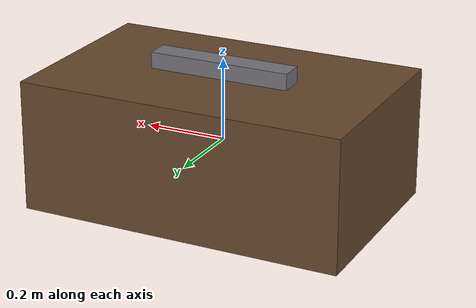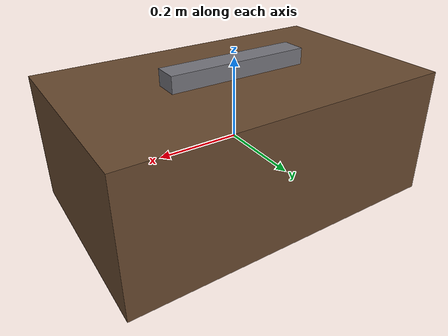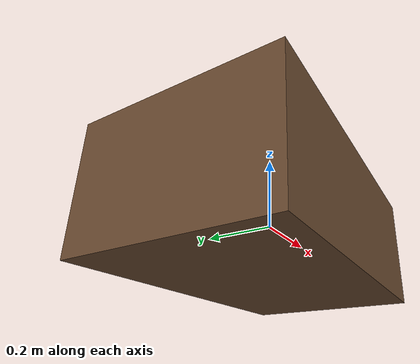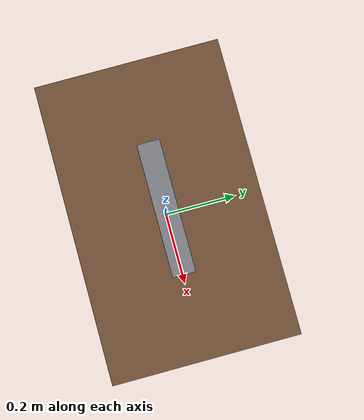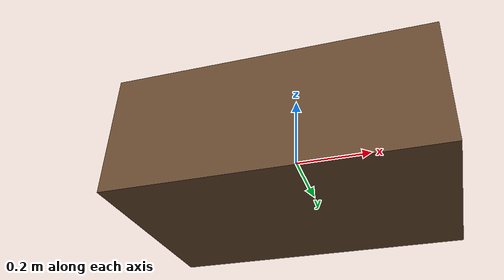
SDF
<?xml version="1.0"?>
<sdf version="1.6">
  <!-- Large checked bag: 80 x 50 x 32 cm, 20 kg -->
  <model name="suitcase_large">
    <link name="suitcase_link">
      <inertial>
        <mass>20.0</mass>
        <inertia>
          <ixx>0.427</ixx><ixy>0</ixy><ixz>0</ixz>
          <iyy>1.173</iyy><iyz>0</iyz>
          <izz>1.493</izz>
        </inertia>
      </inertial>
      <visual name="body_visual">
        <geometry><box><size>0.80 0.50 0.32</size></box></geometry>
        <material>
          <ambient>0.25 0.18 0.12 1</ambient>
          <diffuse>0.40 0.28 0.18 1</diffuse>
        </material>
      </visual>
      <collision name="body_collision">
        <geometry><box><size>0.80 0.50 0.32</size></box></geometry>
        <surface>
          <friction><ode><mu>0.6</mu><mu2>0.6</mu2></ode></friction>
        </surface>
      </collision>
      <visual name="handle_visual">
        <pose>0 0 0.18 0 0 0</pose>
        <geometry><box><size>0.35 0.06 0.04</size></box></geometry>
        <material>
          <ambient>0.3 0.3 0.32 1</ambient>
          <diffuse>0.45 0.45 0.48 1</diffuse>
        </material>
      </visual>
    </link>
  </model>
</sdf>
